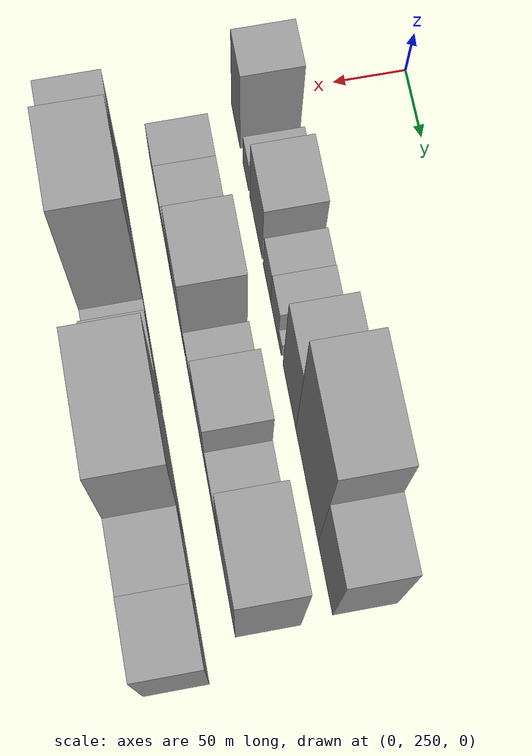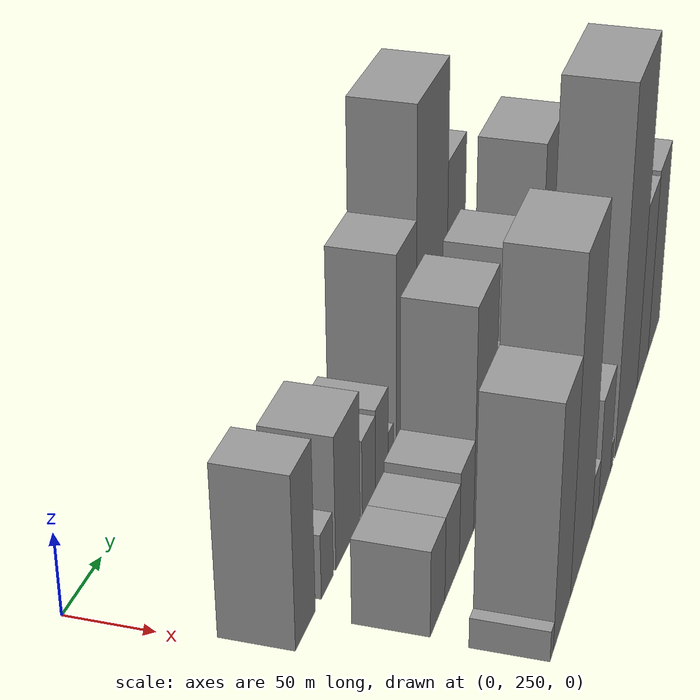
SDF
<sdf version="1.6">
 <world name="default">
  <model name="building_27">
   <static>1</static>
   <pose>100.0000 270.2327 0 0.000000 0.000000 0.000000</pose>
   <link name="link">
    <pose>0 0 51.00 0 0 0</pose>
    <collision name="collision"><geometry><box><size>40.0000 31.9914 102.0000</size></box></geometry></collision>
    <visual name="visual">
     <cast_shadows>0</cast_shadows>
     <geometry><box><size>40.0000 31.9914 102.0000</size></box></geometry>
     <material>
      <script>
       <uri>model://grey_wall/materials/scripts</uri>
       <uri>model://grey_wall/materials/textures</uri>
       <name>vrc/grey_wall</name>
      </script>
     </material>
    </visual>
   </link>
  </model>
  <model name="building_28">
   <static>1</static>
   <pose>100.0000 306.6255 0 0.000000 0.000000 0.000000</pose>
   <link name="link">
    <pose>0 0 19.50 0 0 0</pose>
    <collision name="collision"><geometry><box><size>40.0000 20.7942 39.0000</size></box></geometry></collision>
    <visual name="visual">
     <cast_shadows>0</cast_shadows>
     <geometry><box><size>40.0000 20.7942 39.0000</size></box></geometry>
     <material>
      <script>
       <uri>model://grey_wall/materials/scripts</uri>
       <uri>model://grey_wall/materials/textures</uri>
       <name>vrc/grey_wall</name>
      </script>
     </material>
    </visual>
   </link>
  </model>
  <model name="building_29">
   <static>1</static>
   <pose>100.0000 343.2490 0 0.000000 0.000000 0.000000</pose>
   <link name="link">
    <pose>0 0 40.50 0 0 0</pose>
    <collision name="collision"><geometry><box><size>40.0000 44.4526 81.0000</size></box></geometry></collision>
    <visual name="visual">
     <cast_shadows>0</cast_shadows>
     <geometry><box><size>40.0000 44.4526 81.0000</size></box></geometry>
     <material>
      <script>
       <uri>model://grey_wall/materials/scripts</uri>
       <uri>model://grey_wall/materials/textures</uri>
       <name>vrc/grey_wall</name>
      </script>
     </material>
    </visual>
   </link>
  </model>
  <model name="building_30">
   <static>1</static>
   <pose>100.0000 382.4299 0 0.000000 0.000000 0.000000</pose>
   <link name="link">
    <pose>0 0 24.00 0 0 0</pose>
    <collision name="collision"><geometry><box><size>40.0000 25.9092 48.0000</size></box></geometry></collision>
    <visual name="visual">
     <cast_shadows>0</cast_shadows>
     <geometry><box><size>40.0000 25.9092 48.0000</size></box></geometry>
     <material>
      <script>
       <uri>model://grey_wall/materials/scripts</uri>
       <uri>model://grey_wall/materials/textures</uri>
       <name>vrc/grey_wall</name>
      </script>
     </material>
    </visual>
   </link>
  </model>
  <model name="building_31">
   <static>1</static>
   <pose>100.0000 408.2761 0 0.000000 0.000000 0.000000</pose>
   <link name="link">
    <pose>0 0 25.50 0 0 0</pose>
    <collision name="collision"><geometry><box><size>40.0000 25.7833 51.0000</size></box></geometry></collision>
    <visual name="visual">
     <cast_shadows>0</cast_shadows>
     <geometry><box><size>40.0000 25.7833 51.0000</size></box></geometry>
     <material>
      <script>
       <uri>model://grey_wall/materials/scripts</uri>
       <uri>model://grey_wall/materials/textures</uri>
       <name>vrc/grey_wall</name>
      </script>
     </material>
    </visual>
   </link>
  </model>
  <model name="building_32">
   <static>1</static>
   <pose>100.0000 426.4053 0 0.000000 0.000000 0.000000</pose>
   <link name="link">
    <pose>0 0 10.50 0 0 0</pose>
    <collision name="collision"><geometry><box><size>40.0000 10.4751 21.0000</size></box></geometry></collision>
    <visual name="visual">
     <cast_shadows>0</cast_shadows>
     <geometry><box><size>40.0000 10.4751 21.0000</size></box></geometry>
     <material>
      <script>
       <uri>model://grey_wall/materials/scripts</uri>
       <uri>model://grey_wall/materials/textures</uri>
       <name>vrc/grey_wall</name>
      </script>
     </material>
    </visual>
   </link>
  </model>
  <model name="building_33">
   <static>1</static>
   <pose>100.0000 459.0152 0 0.000000 0.000000 0.000000</pose>
   <link name="link">
    <pose>0 0 61.50 0 0 0</pose>
    <collision name="collision"><geometry><box><size>40.0000 42.7447 123.0000</size></box></geometry></collision>
    <visual name="visual">
     <cast_shadows>0</cast_shadows>
     <geometry><box><size>40.0000 42.7447 123.0000</size></box></geometry>
     <material>
      <script>
       <uri>model://grey_wall/materials/scripts</uri>
       <uri>model://grey_wall/materials/textures</uri>
       <name>vrc/grey_wall</name>
      </script>
     </material>
    </visual>
   </link>
  </model>
  <model name="building_34">
   <static>1</static>
   <pose>100.0000 516.2452 0 0.000000 0.000000 0.000000</pose>
   <link name="link">
    <pose>0 0 96.00 0 0 0</pose>
    <collision name="collision"><geometry><box><size>40.0000 71.7153 192.0000</size></box></geometry></collision>
    <visual name="visual">
     <cast_shadows>0</cast_shadows>
     <geometry><box><size>40.0000 71.7153 192.0000</size></box></geometry>
     <material>
      <script>
       <uri>model://grey_wall/materials/scripts</uri>
       <uri>model://grey_wall/materials/textures</uri>
       <name>vrc/grey_wall</name>
      </script>
     </material>
    </visual>
   </link>
  </model>
  <model name="building_35">
   <static>1</static>
   <pose>100.0000 574.6132 0 0.000000 0.000000 0.000000</pose>
   <link name="link">
    <pose>0 0 63.00 0 0 0</pose>
    <collision name="collision"><geometry><box><size>40.0000 45.0207 126.0000</size></box></geometry></collision>
    <visual name="visual">
     <cast_shadows>0</cast_shadows>
     <geometry><box><size>40.0000 45.0207 126.0000</size></box></geometry>
     <material>
      <script>
       <uri>model://grey_wall/materials/scripts</uri>
       <uri>model://grey_wall/materials/textures</uri>
       <name>vrc/grey_wall</name>
      </script>
     </material>
    </visual>
   </link>
  </model>
  <model name="building_59">
   <static>1</static>
   <pose>160.0000 296.4189 0 0.000000 0.000000 0.000000</pose>
   <link name="link">
    <pose>0 0 25.50 0 0 0</pose>
    <collision name="collision"><geometry><box><size>40.0000 29.1971 51.0000</size></box></geometry></collision>
    <visual name="visual">
     <cast_shadows>0</cast_shadows>
     <geometry><box><size>40.0000 29.1971 51.0000</size></box></geometry>
     <material>
      <script>
       <uri>model://grey_wall/materials/scripts</uri>
       <uri>model://grey_wall/materials/textures</uri>
       <name>vrc/grey_wall</name>
      </script>
     </material>
    </visual>
   </link>
  </model>
  <model name="building_60">
   <static>1</static>
   <pose>160.0000 326.1524 0 0.000000 0.000000 0.000000</pose>
   <link name="link">
    <pose>0 0 25.50 0 0 0</pose>
    <collision name="collision"><geometry><box><size>40.0000 30.2699 51.0000</size></box></geometry></collision>
    <visual name="visual">
     <cast_shadows>0</cast_shadows>
     <geometry><box><size>40.0000 30.2699 51.0000</size></box></geometry>
     <material>
      <script>
       <uri>model://grey_wall/materials/scripts</uri>
       <uri>model://grey_wall/materials/textures</uri>
       <name>vrc/grey_wall</name>
      </script>
     </material>
    </visual>
   </link>
  </model>
  <model name="building_61">
   <static>1</static>
   <pose>160.0000 357.0681 0 0.000000 0.000000 0.000000</pose>
   <link name="link">
    <pose>0 0 28.50 0 0 0</pose>
    <collision name="collision"><geometry><box><size>40.0000 31.5616 57.0000</size></box></geometry></collision>
    <visual name="visual">
     <cast_shadows>0</cast_shadows>
     <geometry><box><size>40.0000 31.5616 57.0000</size></box></geometry>
     <material>
      <script>
       <uri>model://grey_wall/materials/scripts</uri>
       <uri>model://grey_wall/materials/textures</uri>
       <name>vrc/grey_wall</name>
      </script>
     </material>
    </visual>
   </link>
  </model>
  <model name="building_62">
   <static>1</static>
   <pose>160.0000 396.8543 0 0.000000 0.000000 0.000000</pose>
   <link name="link">
    <pose>0 0 67.50 0 0 0</pose>
    <collision name="collision"><geometry><box><size>40.0000 48.0108 135.0000</size></box></geometry></collision>
    <visual name="visual">
     <cast_shadows>0</cast_shadows>
     <geometry><box><size>40.0000 48.0108 135.0000</size></box></geometry>
     <material>
      <script>
       <uri>model://grey_wall/materials/scripts</uri>
       <uri>model://grey_wall/materials/textures</uri>
       <name>vrc/grey_wall</name>
      </script>
     </material>
    </visual>
   </link>
  </model>
  <model name="building_63">
   <static>1</static>
   <pose>160.0000 442.9675 0 0.000000 0.000000 0.000000</pose>
   <link name="link">
    <pose>0 0 33.00 0 0 0</pose>
    <collision name="collision"><geometry><box><size>40.0000 34.2156 66.0000</size></box></geometry></collision>
    <visual name="visual">
     <cast_shadows>0</cast_shadows>
     <geometry><box><size>40.0000 34.2156 66.0000</size></box></geometry>
     <material>
      <script>
       <uri>model://grey_wall/materials/scripts</uri>
       <uri>model://grey_wall/materials/textures</uri>
       <name>vrc/grey_wall</name>
      </script>
     </material>
    </visual>
   </link>
  </model>
  <model name="building_64">
   <static>1</static>
   <pose>160.0000 480.2894 0 0.000000 0.000000 0.000000</pose>
   <link name="link">
    <pose>0 0 61.50 0 0 0</pose>
    <collision name="collision"><geometry><box><size>40.0000 40.4282 123.0000</size></box></geometry></collision>
    <visual name="visual">
     <cast_shadows>0</cast_shadows>
     <geometry><box><size>40.0000 40.4282 123.0000</size></box></geometry>
     <material>
      <script>
       <uri>model://grey_wall/materials/scripts</uri>
       <uri>model://grey_wall/materials/textures</uri>
       <name>vrc/grey_wall</name>
      </script>
     </material>
    </visual>
   </link>
  </model>
  <model name="building_65">
   <static>1</static>
   <pose>160.0000 520.0435 0 0.000000 0.000000 0.000000</pose>
   <link name="link">
    <pose>0 0 36.00 0 0 0</pose>
    <collision name="collision"><geometry><box><size>40.0000 39.0801 72.0000</size></box></geometry></collision>
    <visual name="visual">
     <cast_shadows>0</cast_shadows>
     <geometry><box><size>40.0000 39.0801 72.0000</size></box></geometry>
     <material>
      <script>
       <uri>model://grey_wall/materials/scripts</uri>
       <uri>model://grey_wall/materials/textures</uri>
       <name>vrc/grey_wall</name>
      </script>
     </material>
    </visual>
   </link>
  </model>
  <model name="building_66">
   <static>1</static>
   <pose>160.0000 569.5487 0 0.000000 0.000000 0.000000</pose>
   <link name="link">
    <pose>0 0 75.00 0 0 0</pose>
    <collision name="collision"><geometry><box><size>40.0000 59.9302 150.0000</size></box></geometry></collision>
    <visual name="visual">
     <cast_shadows>0</cast_shadows>
     <geometry><box><size>40.0000 59.9302 150.0000</size></box></geometry>
     <material>
      <script>
       <uri>model://grey_wall/materials/scripts</uri>
       <uri>model://grey_wall/materials/textures</uri>
       <name>vrc/grey_wall</name>
      </script>
     </material>
    </visual>
   </link>
  </model>
  <model name="building_95">
   <static>1</static>
   <pose>220.0000 282.9772 0 0.000000 0.000000 0.000000</pose>
   <link name="link">
    <pose>0 0 9.00 0 0 0</pose>
    <collision name="collision"><geometry><box><size>40.0000 7.8792 18.0000</size></box></geometry></collision>
    <visual name="visual">
     <cast_shadows>0</cast_shadows>
     <geometry><box><size>40.0000 7.8792 18.0000</size></box></geometry>
     <material>
      <script>
       <uri>model://grey_wall/materials/scripts</uri>
       <uri>model://grey_wall/materials/textures</uri>
       <name>vrc/grey_wall</name>
      </script>
     </material>
    </visual>
   </link>
  </model>
  <model name="building_96">
   <static>1</static>
   <pose>220.0000 308.5868 0 0.000000 0.000000 0.000000</pose>
   <link name="link">
    <pose>0 0 70.50 0 0 0</pose>
    <collision name="collision"><geometry><box><size>40.0000 43.3400 141.0000</size></box></geometry></collision>
    <visual name="visual">
     <cast_shadows>0</cast_shadows>
     <geometry><box><size>40.0000 43.3400 141.0000</size></box></geometry>
     <material>
      <script>
       <uri>model://grey_wall/materials/scripts</uri>
       <uri>model://grey_wall/materials/textures</uri>
       <name>vrc/grey_wall</name>
      </script>
     </material>
    </visual>
   </link>
  </model>
  <model name="building_97">
   <static>1</static>
   <pose>220.0000 359.8789 0 0.000000 0.000000 0.000000</pose>
   <link name="link">
    <pose>0 0 97.50 0 0 0</pose>
    <collision name="collision"><geometry><box><size>40.0000 59.2442 195.0000</size></box></geometry></collision>
    <visual name="visual">
     <cast_shadows>0</cast_shadows>
     <geometry><box><size>40.0000 59.2442 195.0000</size></box></geometry>
     <material>
      <script>
       <uri>model://grey_wall/materials/scripts</uri>
       <uri>model://grey_wall/materials/textures</uri>
       <name>vrc/grey_wall</name>
      </script>
     </material>
    </visual>
   </link>
  </model>
  <model name="building_98">
   <static>1</static>
   <pose>220.0000 399.1156 0 0.000000 0.000000 0.000000</pose>
   <link name="link">
    <pose>0 0 16.50 0 0 0</pose>
    <collision name="collision"><geometry><box><size>40.0000 19.2291 33.0000</size></box></geometry></collision>
    <visual name="visual">
     <cast_shadows>0</cast_shadows>
     <geometry><box><size>40.0000 19.2291 33.0000</size></box></geometry>
     <material>
      <script>
       <uri>model://grey_wall/materials/scripts</uri>
       <uri>model://grey_wall/materials/textures</uri>
       <name>vrc/grey_wall</name>
      </script>
     </material>
    </visual>
   </link>
  </model>
  <model name="building_99">
   <static>1</static>
   <pose>220.0000 427.6666 0 0.000000 0.000000 0.000000</pose>
   <link name="link">
    <pose>0 0 34.50 0 0 0</pose>
    <collision name="collision"><geometry><box><size>40.0000 37.8730 69.0000</size></box></geometry></collision>
    <visual name="visual">
     <cast_shadows>0</cast_shadows>
     <geometry><box><size>40.0000 37.8730 69.0000</size></box></geometry>
     <material>
      <script>
       <uri>model://grey_wall/materials/scripts</uri>
       <uri>model://grey_wall/materials/textures</uri>
       <name>vrc/grey_wall</name>
      </script>
     </material>
    </visual>
   </link>
  </model>
  <model name="building_100">
   <static>1</static>
   <pose>220.0000 450.6023 0 0.000000 0.000000 0.000000</pose>
   <link name="link">
    <pose>0 0 9.00 0 0 0</pose>
    <collision name="collision"><geometry><box><size>40.0000 7.9983 18.0000</size></box></geometry></collision>
    <visual name="visual">
     <cast_shadows>0</cast_shadows>
     <geometry><box><size>40.0000 7.9983 18.0000</size></box></geometry>
     <material>
      <script>
       <uri>model://grey_wall/materials/scripts</uri>
       <uri>model://grey_wall/materials/textures</uri>
       <name>vrc/grey_wall</name>
      </script>
     </material>
    </visual>
   </link>
  </model>
  <model name="building_101">
   <static>1</static>
   <pose>220.0000 499.0299 0 0.000000 0.000000 0.000000</pose>
   <link name="link">
    <pose>0 0 112.50 0 0 0</pose>
    <collision name="collision"><geometry><box><size>40.0000 74.8569 225.0000</size></box></geometry></collision>
    <visual name="visual">
     <cast_shadows>0</cast_shadows>
     <geometry><box><size>40.0000 74.8569 225.0000</size></box></geometry>
     <material>
      <script>
       <uri>model://grey_wall/materials/scripts</uri>
       <uri>model://grey_wall/materials/textures</uri>
       <name>vrc/grey_wall</name>
      </script>
     </material>
    </visual>
   </link>
  </model>
  <model name="building_102">
   <static>1</static>
   <pose>220.0000 557.6275 0 0.000000 0.000000 0.000000</pose>
   <link name="link">
    <pose>0 0 60.00 0 0 0</pose>
    <collision name="collision"><geometry><box><size>40.0000 42.3383 120.0000</size></box></geometry></collision>
    <visual name="visual">
     <cast_shadows>0</cast_shadows>
     <geometry><box><size>40.0000 42.3383 120.0000</size></box></geometry>
     <material>
      <script>
       <uri>model://grey_wall/materials/scripts</uri>
       <uri>model://grey_wall/materials/textures</uri>
       <name>vrc/grey_wall</name>
      </script>
     </material>
    </visual>
   </link>
  </model>
  <model name="building_103">
   <static>1</static>
   <pose>220.0000 601.3140 0 0.000000 0.000000 0.000000</pose>
   <link name="link">
    <pose>0 0 61.50 0 0 0</pose>
    <collision name="collision"><geometry><box><size>40.0000 45.0348 123.0000</size></box></geometry></collision>
    <visual name="visual">
     <cast_shadows>0</cast_shadows>
     <geometry><box><size>40.0000 45.0348 123.0000</size></box></geometry>
     <material>
      <script>
       <uri>model://grey_wall/materials/scripts</uri>
       <uri>model://grey_wall/materials/textures</uri>
       <name>vrc/grey_wall</name>
      </script>
     </material>
    </visual>
   </link>
  </model>
 </world>
</sdf>
